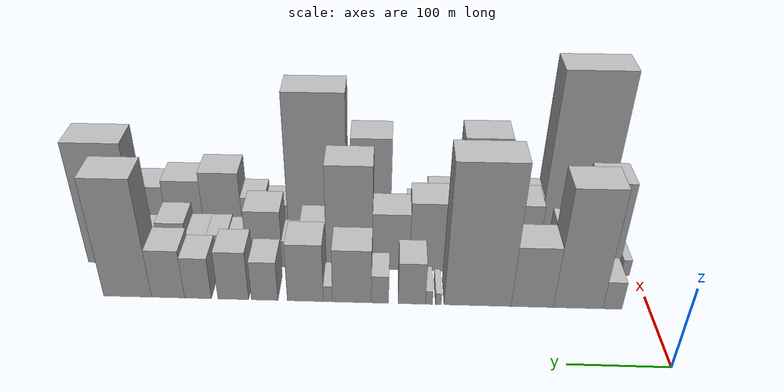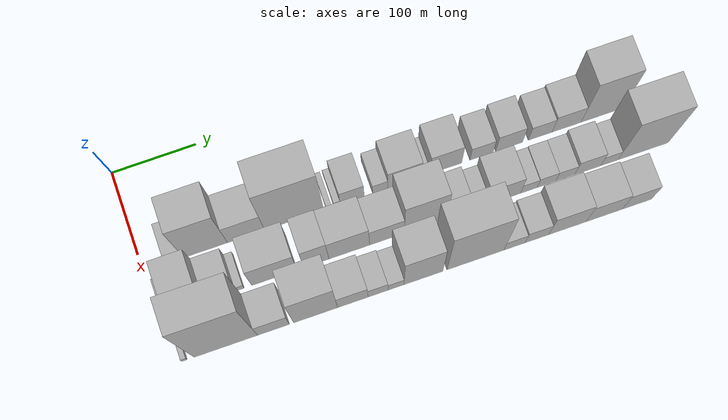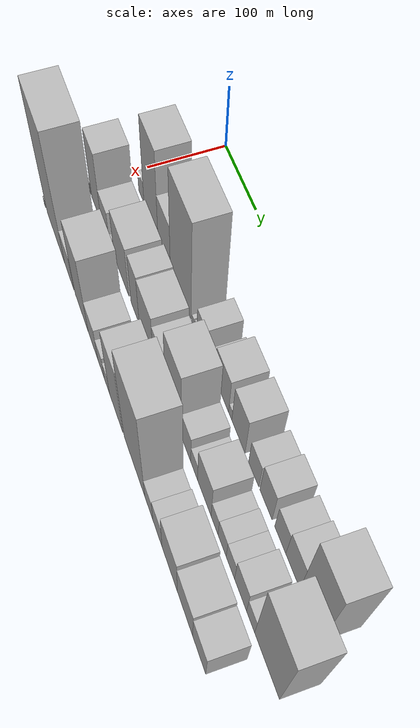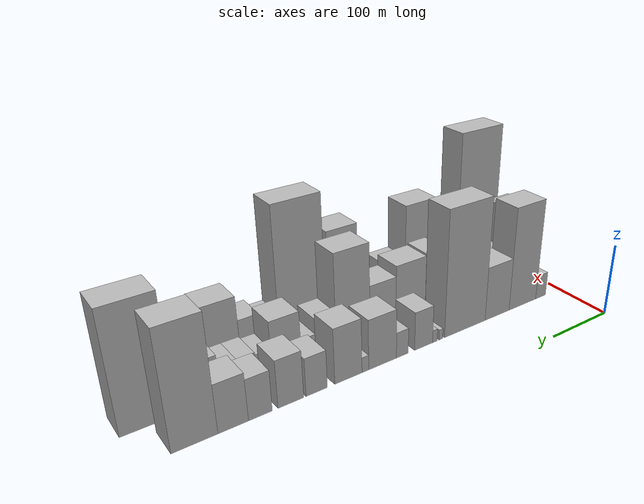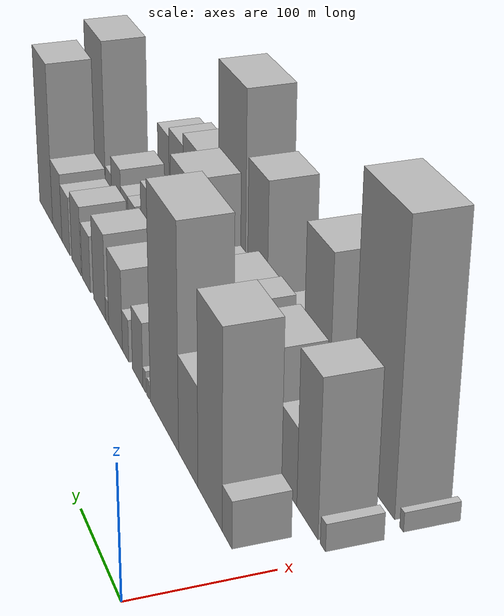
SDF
<sdf version="1.6">
 <world name="default">
  <model name="building_18">
   <static>1</static>
   <pose>100.0000 38.4075 0 0.000000 0.000000 0.000000</pose>
   <link name="link">
    <pose>0 0 18.00 0 0 0</pose>
    <collision name="collision"><geometry><box><size>40.0000 19.6983 36.0000</size></box></geometry></collision>
    <visual name="visual">
     <cast_shadows>0</cast_shadows>
     <geometry><box><size>40.0000 19.6983 36.0000</size></box></geometry>
     <material>
      <script>
       <uri>model://HANNAS_wall/materials/scripts</uri>
       <uri>model://HANNAS_wall/materials/textures</uri>
       <name>vrc/HANNAS_wall</name>
      </script>
     </material>
    </visual>
   </link>
  </model>
  <model name="building_19">
   <static>1</static>
   <pose>100.0000 73.9389 0 0.000000 0.000000 0.000000</pose>
   <link name="link">
    <pose>0 0 75.00 0 0 0</pose>
    <collision name="collision"><geometry><box><size>40.0000 51.3646 150.0000</size></box></geometry></collision>
    <visual name="visual">
     <cast_shadows>0</cast_shadows>
     <geometry><box><size>40.0000 51.3646 150.0000</size></box></geometry>
     <material>
      <script>
       <uri>model://HANNAS_wall/materials/scripts</uri>
       <uri>model://HANNAS_wall/materials/textures</uri>
       <name>vrc/HANNAS_wall</name>
      </script>
     </material>
    </visual>
   </link>
  </model>
  <model name="building_20">
   <static>1</static>
   <pose>100.0000 121.5936 0 0.000000 0.000000 0.000000</pose>
   <link name="link">
    <pose>0 0 39.00 0 0 0</pose>
    <collision name="collision"><geometry><box><size>40.0000 43.9448 78.0000</size></box></geometry></collision>
    <visual name="visual">
     <cast_shadows>0</cast_shadows>
     <geometry><box><size>40.0000 43.9448 78.0000</size></box></geometry>
     <material>
      <script>
       <uri>model://HANNAS_wall/materials/scripts</uri>
       <uri>model://HANNAS_wall/materials/textures</uri>
       <name>vrc/HANNAS_wall</name>
      </script>
     </material>
    </visual>
   </link>
  </model>
  <model name="building_21">
   <static>1</static>
   <pose>100.0000 178.5082 0 0.000000 0.000000 0.000000</pose>
   <link name="link">
    <pose>0 0 88.50 0 0 0</pose>
    <collision name="collision"><geometry><box><size>40.0000 69.8843 177.0000</size></box></geometry></collision>
    <visual name="visual">
     <cast_shadows>0</cast_shadows>
     <geometry><box><size>40.0000 69.8843 177.0000</size></box></geometry>
     <material>
      <script>
       <uri>model://HANNAS_wall/materials/scripts</uri>
       <uri>model://HANNAS_wall/materials/textures</uri>
       <name>vrc/HANNAS_wall</name>
      </script>
     </material>
    </visual>
   </link>
  </model>
  <model name="building_22">
   <static>1</static>
   <pose>100.0000 219.5186 0 0.000000 0.000000 0.000000</pose>
   <link name="link">
    <pose>0 0 7.50 0 0 0</pose>
    <collision name="collision"><geometry><box><size>40.0000 6.1366 15.0000</size></box></geometry></collision>
    <visual name="visual">
     <cast_shadows>0</cast_shadows>
     <geometry><box><size>40.0000 6.1366 15.0000</size></box></geometry>
     <material>
      <script>
       <uri>model://HANNAS_wall/materials/scripts</uri>
       <uri>model://HANNAS_wall/materials/textures</uri>
       <name>vrc/HANNAS_wall</name>
      </script>
     </material>
    </visual>
   </link>
  </model>
  <model name="building_23">
   <static>1</static>
   <pose>100.0000 229.3494 0 0.000000 0.000000 0.000000</pose>
   <link name="link">
    <pose>0 0 9.00 0 0 0</pose>
    <collision name="collision"><geometry><box><size>40.0000 7.5250 18.0000</size></box></geometry></collision>
    <visual name="visual">
     <cast_shadows>0</cast_shadows>
     <geometry><box><size>40.0000 7.5250 18.0000</size></box></geometry>
     <material>
      <script>
       <uri>model://HANNAS_wall/materials/scripts</uri>
       <uri>model://HANNAS_wall/materials/textures</uri>
       <name>vrc/HANNAS_wall</name>
      </script>
     </material>
    </visual>
   </link>
  </model>
  <model name="building_24">
   <static>1</static>
   <pose>100.0000 247.4347 0 0.000000 0.000000 0.000000</pose>
   <link name="link">
    <pose>0 0 27.00 0 0 0</pose>
    <collision name="collision"><geometry><box><size>40.0000 28.6455 54.0000</size></box></geometry></collision>
    <visual name="visual">
     <cast_shadows>0</cast_shadows>
     <geometry><box><size>40.0000 28.6455 54.0000</size></box></geometry>
     <material>
      <script>
       <uri>model://HANNAS_wall/materials/scripts</uri>
       <uri>model://HANNAS_wall/materials/textures</uri>
       <name>vrc/HANNAS_wall</name>
      </script>
     </material>
    </visual>
   </link>
  </model>
  <model name="building_25">
   <static>1</static>
   <pose>100.0000 280.8469 0 0.000000 0.000000 0.000000</pose>
   <link name="link">
    <pose>0 0 18.00 0 0 0</pose>
    <collision name="collision"><geometry><box><size>40.0000 18.1789 36.0000</size></box></geometry></collision>
    <visual name="visual">
     <cast_shadows>0</cast_shadows>
     <geometry><box><size>40.0000 18.1789 36.0000</size></box></geometry>
     <material>
      <script>
       <uri>model://HANNAS_wall/materials/scripts</uri>
       <uri>model://HANNAS_wall/materials/textures</uri>
       <name>vrc/HANNAS_wall</name>
      </script>
     </material>
    </visual>
   </link>
  </model>
  <model name="building_26">
   <static>1</static>
   <pose>100.0000 310.4308 0 0.000000 0.000000 0.000000</pose>
   <link name="link">
    <pose>0 0 34.50 0 0 0</pose>
    <collision name="collision"><geometry><box><size>40.0000 40.9889 69.0000</size></box></geometry></collision>
    <visual name="visual">
     <cast_shadows>0</cast_shadows>
     <geometry><box><size>40.0000 40.9889 69.0000</size></box></geometry>
     <material>
      <script>
       <uri>model://HANNAS_wall/materials/scripts</uri>
       <uri>model://HANNAS_wall/materials/textures</uri>
       <name>vrc/HANNAS_wall</name>
      </script>
     </material>
    </visual>
   </link>
  </model>
  <model name="building_27">
   <static>1</static>
   <pose>100.0000 335.7173 0 0.000000 0.000000 0.000000</pose>
   <link name="link">
    <pose>0 0 10.50 0 0 0</pose>
    <collision name="collision"><geometry><box><size>40.0000 9.5842 21.0000</size></box></geometry></collision>
    <visual name="visual">
     <cast_shadows>0</cast_shadows>
     <geometry><box><size>40.0000 9.5842 21.0000</size></box></geometry>
     <material>
      <script>
       <uri>model://HANNAS_wall/materials/scripts</uri>
       <uri>model://HANNAS_wall/materials/textures</uri>
       <name>vrc/HANNAS_wall</name>
      </script>
     </material>
    </visual>
   </link>
  </model>
  <model name="building_28">
   <static>1</static>
   <pose>100.0000 359.5613 0 0.000000 0.000000 0.000000</pose>
   <link name="link">
    <pose>0 0 37.50 0 0 0</pose>
    <collision name="collision"><geometry><box><size>40.0000 38.1038 75.0000</size></box></geometry></collision>
    <visual name="visual">
     <cast_shadows>0</cast_shadows>
     <geometry><box><size>40.0000 38.1038 75.0000</size></box></geometry>
     <material>
      <script>
       <uri>model://HANNAS_wall/materials/scripts</uri>
       <uri>model://HANNAS_wall/materials/textures</uri>
       <name>vrc/HANNAS_wall</name>
      </script>
     </material>
    </visual>
   </link>
  </model>
  <model name="building_29">
   <static>1</static>
   <pose>100.0000 402.6842 0 0.000000 0.000000 0.000000</pose>
   <link name="link">
    <pose>0 0 25.50 0 0 0</pose>
    <collision name="collision"><geometry><box><size>40.0000 28.1420 51.0000</size></box></geometry></collision>
    <visual name="visual">
     <cast_shadows>0</cast_shadows>
     <geometry><box><size>40.0000 28.1420 51.0000</size></box></geometry>
     <material>
      <script>
       <uri>model://HANNAS_wall/materials/scripts</uri>
       <uri>model://HANNAS_wall/materials/textures</uri>
       <name>vrc/HANNAS_wall</name>
      </script>
     </material>
    </visual>
   </link>
  </model>
  <model name="building_30">
   <static>1</static>
   <pose>100.0000 436.0479 0 0.000000 0.000000 0.000000</pose>
   <link name="link">
    <pose>0 0 31.50 0 0 0</pose>
    <collision name="collision"><geometry><box><size>40.0000 32.5853 63.0000</size></box></geometry></collision>
    <visual name="visual">
     <cast_shadows>0</cast_shadows>
     <geometry><box><size>40.0000 32.5853 63.0000</size></box></geometry>
     <material>
      <script>
       <uri>model://HANNAS_wall/materials/scripts</uri>
       <uri>model://HANNAS_wall/materials/textures</uri>
       <name>vrc/HANNAS_wall</name>
      </script>
     </material>
    </visual>
   </link>
  </model>
  <model name="building_31">
   <static>1</static>
   <pose>100.0000 473.7075 0 0.000000 0.000000 0.000000</pose>
   <link name="link">
    <pose>0 0 27.00 0 0 0</pose>
    <collision name="collision"><geometry><box><size>40.0000 28.7339 54.0000</size></box></geometry></collision>
    <visual name="visual">
     <cast_shadows>0</cast_shadows>
     <geometry><box><size>40.0000 28.7339 54.0000</size></box></geometry>
     <material>
      <script>
       <uri>model://HANNAS_wall/materials/scripts</uri>
       <uri>model://HANNAS_wall/materials/textures</uri>
       <name>vrc/HANNAS_wall</name>
      </script>
     </material>
    </visual>
   </link>
  </model>
  <model name="building_32">
   <static>1</static>
   <pose>100.0000 505.7392 0 0.000000 0.000000 0.000000</pose>
   <link name="link">
    <pose>0 0 31.50 0 0 0</pose>
    <collision name="collision"><geometry><box><size>40.0000 35.3296 63.0000</size></box></geometry></collision>
    <visual name="visual">
     <cast_shadows>0</cast_shadows>
     <geometry><box><size>40.0000 35.3296 63.0000</size></box></geometry>
     <material>
      <script>
       <uri>model://HANNAS_wall/materials/scripts</uri>
       <uri>model://HANNAS_wall/materials/textures</uri>
       <name>vrc/HANNAS_wall</name>
      </script>
     </material>
    </visual>
   </link>
  </model>
  <model name="building_33">
   <static>1</static>
   <pose>100.0000 549.0636 0 0.000000 0.000000 0.000000</pose>
   <link name="link">
    <pose>0 0 75.00 0 0 0</pose>
    <collision name="collision"><geometry><box><size>40.0000 51.3193 150.0000</size></box></geometry></collision>
    <visual name="visual">
     <cast_shadows>0</cast_shadows>
     <geometry><box><size>40.0000 51.3193 150.0000</size></box></geometry>
     <material>
      <script>
       <uri>model://HANNAS_wall/materials/scripts</uri>
       <uri>model://HANNAS_wall/materials/textures</uri>
       <name>vrc/HANNAS_wall</name>
      </script>
     </material>
    </visual>
   </link>
  </model>
  <model name="building_51">
   <static>1</static>
   <pose>155.0000 12.1256 0 0.000000 0.000000 0.000000</pose>
   <link name="link">
    <pose>0 0 10.50 0 0 0</pose>
    <collision name="collision"><geometry><box><size>40.0000 9.0807 21.0000</size></box></geometry></collision>
    <visual name="visual">
     <cast_shadows>0</cast_shadows>
     <geometry><box><size>40.0000 9.0807 21.0000</size></box></geometry>
     <material>
      <script>
       <uri>model://HANNAS_wall/materials/scripts</uri>
       <uri>model://HANNAS_wall/materials/textures</uri>
       <name>vrc/HANNAS_wall</name>
      </script>
     </material>
    </visual>
   </link>
  </model>
  <model name="building_52">
   <static>1</static>
   <pose>155.0000 39.7600 0 0.000000 0.000000 0.000000</pose>
   <link name="link">
    <pose>0 0 60.00 0 0 0</pose>
    <collision name="collision"><geometry><box><size>40.0000 38.1880 120.0000</size></box></geometry></collision>
    <visual name="visual">
     <cast_shadows>0</cast_shadows>
     <geometry><box><size>40.0000 38.1880 120.0000</size></box></geometry>
     <material>
      <script>
       <uri>model://HANNAS_wall/materials/scripts</uri>
       <uri>model://HANNAS_wall/materials/textures</uri>
       <name>vrc/HANNAS_wall</name>
      </script>
     </material>
    </visual>
   </link>
  </model>
  <model name="building_53">
   <static>1</static>
   <pose>155.0000 75.3585 0 0.000000 0.000000 0.000000</pose>
   <link name="link">
    <pose>0 0 30.00 0 0 0</pose>
    <collision name="collision"><geometry><box><size>40.0000 33.0092 60.0000</size></box></geometry></collision>
    <visual name="visual">
     <cast_shadows>0</cast_shadows>
     <geometry><box><size>40.0000 33.0092 60.0000</size></box></geometry>
     <material>
      <script>
       <uri>model://HANNAS_wall/materials/scripts</uri>
       <uri>model://HANNAS_wall/materials/textures</uri>
       <name>vrc/HANNAS_wall</name>
      </script>
     </material>
    </visual>
   </link>
  </model>
  <model name="building_54">
   <static>1</static>
   <pose>155.0000 96.5791 0 0.000000 0.000000 0.000000</pose>
   <link name="link">
    <pose>0 0 10.50 0 0 0</pose>
    <collision name="collision"><geometry><box><size>40.0000 9.4319 21.0000</size></box></geometry></collision>
    <visual name="visual">
     <cast_shadows>0</cast_shadows>
     <geometry><box><size>40.0000 9.4319 21.0000</size></box></geometry>
     <material>
      <script>
       <uri>model://HANNAS_wall/materials/scripts</uri>
       <uri>model://HANNAS_wall/materials/textures</uri>
       <name>vrc/HANNAS_wall</name>
      </script>
     </material>
    </visual>
   </link>
  </model>
  <model name="building_55">
   <static>1</static>
   <pose>155.0000 136.9483 0 0.000000 0.000000 0.000000</pose>
   <link name="link">
    <pose>0 0 45.00 0 0 0</pose>
    <collision name="collision"><geometry><box><size>40.0000 53.3066 90.0000</size></box></geometry></collision>
    <visual name="visual">
     <cast_shadows>0</cast_shadows>
     <geometry><box><size>40.0000 53.3066 90.0000</size></box></geometry>
     <material>
      <script>
       <uri>model://HANNAS_wall/materials/scripts</uri>
       <uri>model://HANNAS_wall/materials/textures</uri>
       <name>vrc/HANNAS_wall</name>
      </script>
     </material>
    </visual>
   </link>
  </model>
  <model name="building_56">
   <static>1</static>
   <pose>155.0000 186.3522 0 0.000000 0.000000 0.000000</pose>
   <link name="link">
    <pose>0 0 46.50 0 0 0</pose>
    <collision name="collision"><geometry><box><size>40.0000 29.5012 93.0000</size></box></geometry></collision>
    <visual name="visual">
     <cast_shadows>0</cast_shadows>
     <geometry><box><size>40.0000 29.5012 93.0000</size></box></geometry>
     <material>
      <script>
       <uri>model://HANNAS_wall/materials/scripts</uri>
       <uri>model://HANNAS_wall/materials/textures</uri>
       <name>vrc/HANNAS_wall</name>
      </script>
     </material>
    </visual>
   </link>
  </model>
  <model name="building_57">
   <static>1</static>
   <pose>155.0000 225.1708 0 0.000000 0.000000 0.000000</pose>
   <link name="link">
    <pose>0 0 45.00 0 0 0</pose>
    <collision name="collision"><geometry><box><size>40.0000 48.1358 90.0000</size></box></geometry></collision>
    <visual name="visual">
     <cast_shadows>0</cast_shadows>
     <geometry><box><size>40.0000 48.1358 90.0000</size></box></geometry>
     <material>
      <script>
       <uri>model://HANNAS_wall/materials/scripts</uri>
       <uri>model://HANNAS_wall/materials/textures</uri>
       <name>vrc/HANNAS_wall</name>
      </script>
     </material>
    </visual>
   </link>
  </model>
  <model name="building_58">
   <static>1</static>
   <pose>155.0000 269.8080 0 0.000000 0.000000 0.000000</pose>
   <link name="link">
    <pose>0 0 37.50 0 0 0</pose>
    <collision name="collision"><geometry><box><size>40.0000 41.1387 75.0000</size></box></geometry></collision>
    <visual name="visual">
     <cast_shadows>0</cast_shadows>
     <geometry><box><size>40.0000 41.1387 75.0000</size></box></geometry>
     <material>
      <script>
       <uri>model://HANNAS_wall/materials/scripts</uri>
       <uri>model://HANNAS_wall/materials/textures</uri>
       <name>vrc/HANNAS_wall</name>
      </script>
     </material>
    </visual>
   </link>
  </model>
  <model name="building_59">
   <static>1</static>
   <pose>155.0000 315.7709 0 0.000000 0.000000 0.000000</pose>
   <link name="link">
    <pose>0 0 67.50 0 0 0</pose>
    <collision name="collision"><geometry><box><size>40.0000 50.7871 135.0000</size></box></geometry></collision>
    <visual name="visual">
     <cast_shadows>0</cast_shadows>
     <geometry><box><size>40.0000 50.7871 135.0000</size></box></geometry>
     <material>
      <script>
       <uri>model://HANNAS_wall/materials/scripts</uri>
       <uri>model://HANNAS_wall/materials/textures</uri>
       <name>vrc/HANNAS_wall</name>
      </script>
     </material>
    </visual>
   </link>
  </model>
  <model name="building_60">
   <static>1</static>
   <pose>155.0000 355.4239 0 0.000000 0.000000 0.000000</pose>
   <link name="link">
    <pose>0 0 28.50 0 0 0</pose>
    <collision name="collision"><geometry><box><size>40.0000 28.5191 57.0000</size></box></geometry></collision>
    <visual name="visual">
     <cast_shadows>0</cast_shadows>
     <geometry><box><size>40.0000 28.5191 57.0000</size></box></geometry>
     <material>
      <script>
       <uri>model://HANNAS_wall/materials/scripts</uri>
       <uri>model://HANNAS_wall/materials/textures</uri>
       <name>vrc/HANNAS_wall</name>
      </script>
     </material>
    </visual>
   </link>
  </model>
  <model name="building_61">
   <static>1</static>
   <pose>155.0000 379.7930 0 0.000000 0.000000 0.000000</pose>
   <link name="link">
    <pose>0 0 18.00 0 0 0</pose>
    <collision name="collision"><geometry><box><size>40.0000 20.2191 36.0000</size></box></geometry></collision>
    <visual name="visual">
     <cast_shadows>0</cast_shadows>
     <geometry><box><size>40.0000 20.2191 36.0000</size></box></geometry>
     <material>
      <script>
       <uri>model://HANNAS_wall/materials/scripts</uri>
       <uri>model://HANNAS_wall/materials/textures</uri>
       <name>vrc/HANNAS_wall</name>
      </script>
     </material>
    </visual>
   </link>
  </model>
  <model name="building_62">
   <static>1</static>
   <pose>155.0000 409.7057 0 0.000000 0.000000 0.000000</pose>
   <link name="link">
    <pose>0 0 37.50 0 0 0</pose>
    <collision name="collision"><geometry><box><size>40.0000 39.6062 75.0000</size></box></geometry></collision>
    <visual name="visual">
     <cast_shadows>0</cast_shadows>
     <geometry><box><size>40.0000 39.6062 75.0000</size></box></geometry>
     <material>
      <script>
       <uri>model://HANNAS_wall/materials/scripts</uri>
       <uri>model://HANNAS_wall/materials/textures</uri>
       <name>vrc/HANNAS_wall</name>
      </script>
     </material>
    </visual>
   </link>
  </model>
  <model name="building_63">
   <static>1</static>
   <pose>155.0000 439.4043 0 0.000000 0.000000 0.000000</pose>
   <link name="link">
    <pose>0 0 19.50 0 0 0</pose>
    <collision name="collision"><geometry><box><size>40.0000 19.7910 39.0000</size></box></geometry></collision>
    <visual name="visual">
     <cast_shadows>0</cast_shadows>
     <geometry><box><size>40.0000 19.7910 39.0000</size></box></geometry>
     <material>
      <script>
       <uri>model://HANNAS_wall/materials/scripts</uri>
       <uri>model://HANNAS_wall/materials/textures</uri>
       <name>vrc/HANNAS_wall</name>
      </script>
     </material>
    </visual>
   </link>
  </model>
  <model name="building_64">
   <static>1</static>
   <pose>155.0000 460.6255 0 0.000000 0.000000 0.000000</pose>
   <link name="link">
    <pose>0 0 21.00 0 0 0</pose>
    <collision name="collision"><geometry><box><size>40.0000 22.6514 42.0000</size></box></geometry></collision>
    <visual name="visual">
     <cast_shadows>0</cast_shadows>
     <geometry><box><size>40.0000 22.6514 42.0000</size></box></geometry>
     <material>
      <script>
       <uri>model://HANNAS_wall/materials/scripts</uri>
       <uri>model://HANNAS_wall/materials/textures</uri>
       <name>vrc/HANNAS_wall</name>
      </script>
     </material>
    </visual>
   </link>
  </model>
  <model name="building_65">
   <static>1</static>
   <pose>155.0000 483.3495 0 0.000000 0.000000 0.000000</pose>
   <link name="link">
    <pose>0 0 21.00 0 0 0</pose>
    <collision name="collision"><geometry><box><size>40.0000 22.7964 42.0000</size></box></geometry></collision>
    <visual name="visual">
     <cast_shadows>0</cast_shadows>
     <geometry><box><size>40.0000 22.7964 42.0000</size></box></geometry>
     <material>
      <script>
       <uri>model://HANNAS_wall/materials/scripts</uri>
       <uri>model://HANNAS_wall/materials/textures</uri>
       <name>vrc/HANNAS_wall</name>
      </script>
     </material>
    </visual>
   </link>
  </model>
  <model name="building_66">
   <static>1</static>
   <pose>155.0000 510.5578 0 0.000000 0.000000 0.000000</pose>
   <link name="link">
    <pose>0 0 28.50 0 0 0</pose>
    <collision name="collision"><geometry><box><size>40.0000 31.6202 57.0000</size></box></geometry></collision>
    <visual name="visual">
     <cast_shadows>0</cast_shadows>
     <geometry><box><size>40.0000 31.6202 57.0000</size></box></geometry>
     <material>
      <script>
       <uri>model://HANNAS_wall/materials/scripts</uri>
       <uri>model://HANNAS_wall/materials/textures</uri>
       <name>vrc/HANNAS_wall</name>
      </script>
     </material>
    </visual>
   </link>
  </model>
  <model name="building_67">
   <static>1</static>
   <pose>155.0000 536.8856 0 0.000000 0.000000 0.000000</pose>
   <link name="link">
    <pose>0 0 19.50 0 0 0</pose>
    <collision name="collision"><geometry><box><size>40.0000 21.0354 39.0000</size></box></geometry></collision>
    <visual name="visual">
     <cast_shadows>0</cast_shadows>
     <geometry><box><size>40.0000 21.0354 39.0000</size></box></geometry>
     <material>
      <script>
       <uri>model://HANNAS_wall/materials/scripts</uri>
       <uri>model://HANNAS_wall/materials/textures</uri>
       <name>vrc/HANNAS_wall</name>
      </script>
     </material>
    </visual>
   </link>
  </model>
  <model name="building_68">
   <static>1</static>
   <pose>155.0000 578.1728 0 0.000000 0.000000 0.000000</pose>
   <link name="link">
    <pose>0 0 78.00 0 0 0</pose>
    <collision name="collision"><geometry><box><size>40.0000 61.5389 156.0000</size></box></geometry></collision>
    <visual name="visual">
     <cast_shadows>0</cast_shadows>
     <geometry><box><size>40.0000 61.5389 156.0000</size></box></geometry>
     <material>
      <script>
       <uri>model://HANNAS_wall/materials/scripts</uri>
       <uri>model://HANNAS_wall/materials/textures</uri>
       <name>vrc/HANNAS_wall</name>
      </script>
     </material>
    </visual>
   </link>
  </model>
  <model name="building_83">
   <static>1</static>
   <pose>210.0000 14.3183 0 0.000000 0.000000 0.000000</pose>
   <link name="link">
    <pose>0 0 7.50 0 0 0</pose>
    <collision name="collision"><geometry><box><size>40.0000 6.0995 15.0000</size></box></geometry></collision>
    <visual name="visual">
     <cast_shadows>0</cast_shadows>
     <geometry><box><size>40.0000 6.0995 15.0000</size></box></geometry>
     <material>
      <script>
       <uri>model://HANNAS_wall/materials/scripts</uri>
       <uri>model://HANNAS_wall/materials/textures</uri>
       <name>vrc/HANNAS_wall</name>
      </script>
     </material>
    </visual>
   </link>
  </model>
  <model name="building_84">
   <static>1</static>
   <pose>210.0000 62.2147 0 0.000000 0.000000 0.000000</pose>
   <link name="link">
    <pose>0 0 109.50 0 0 0</pose>
    <collision name="collision"><geometry><box><size>40.0000 73.6932 219.0000</size></box></geometry></collision>
    <visual name="visual">
     <cast_shadows>0</cast_shadows>
     <geometry><box><size>40.0000 73.6932 219.0000</size></box></geometry>
     <material>
      <script>
       <uri>model://HANNAS_wall/materials/scripts</uri>
       <uri>model://HANNAS_wall/materials/textures</uri>
       <name>vrc/HANNAS_wall</name>
      </script>
     </material>
    </visual>
   </link>
  </model>
  <model name="building_85">
   <static>1</static>
   <pose>210.0000 117.6365 0 0.000000 0.000000 0.000000</pose>
   <link name="link">
    <pose>0 0 31.50 0 0 0</pose>
    <collision name="collision"><geometry><box><size>40.0000 37.1504 63.0000</size></box></geometry></collision>
    <visual name="visual">
     <cast_shadows>0</cast_shadows>
     <geometry><box><size>40.0000 37.1504 63.0000</size></box></geometry>
     <material>
      <script>
       <uri>model://HANNAS_wall/materials/scripts</uri>
       <uri>model://HANNAS_wall/materials/textures</uri>
       <name>vrc/HANNAS_wall</name>
      </script>
     </material>
    </visual>
   </link>
  </model>
  <model name="building_86">
   <static>1</static>
   <pose>210.0000 166.8651 0 0.000000 0.000000 0.000000</pose>
   <link name="link">
    <pose>0 0 69.00 0 0 0</pose>
    <collision name="collision"><geometry><box><size>40.0000 51.3069 138.0000</size></box></geometry></collision>
    <visual name="visual">
     <cast_shadows>0</cast_shadows>
     <geometry><box><size>40.0000 51.3069 138.0000</size></box></geometry>
     <material>
      <script>
       <uri>model://HANNAS_wall/materials/scripts</uri>
       <uri>model://HANNAS_wall/materials/textures</uri>
       <name>vrc/HANNAS_wall</name>
      </script>
     </material>
    </visual>
   </link>
  </model>
  <model name="building_87">
   <static>1</static>
   <pose>210.0000 210.5020 0 0.000000 0.000000 0.000000</pose>
   <link name="link">
    <pose>0 0 31.50 0 0 0</pose>
    <collision name="collision"><geometry><box><size>40.0000 35.9668 63.0000</size></box></geometry></collision>
    <visual name="visual">
     <cast_shadows>0</cast_shadows>
     <geometry><box><size>40.0000 35.9668 63.0000</size></box></geometry>
     <material>
      <script>
       <uri>model://HANNAS_wall/materials/scripts</uri>
       <uri>model://HANNAS_wall/materials/textures</uri>
       <name>vrc/HANNAS_wall</name>
      </script>
     </material>
    </visual>
   </link>
  </model>
  <model name="building_88">
   <static>1</static>
   <pose>210.0000 240.1995 0 0.000000 0.000000 0.000000</pose>
   <link name="link">
    <pose>0 0 22.50 0 0 0</pose>
    <collision name="collision"><geometry><box><size>40.0000 23.4282 45.0000</size></box></geometry></collision>
    <visual name="visual">
     <cast_shadows>0</cast_shadows>
     <geometry><box><size>40.0000 23.4282 45.0000</size></box></geometry>
     <material>
      <script>
       <uri>model://HANNAS_wall/materials/scripts</uri>
       <uri>model://HANNAS_wall/materials/textures</uri>
       <name>vrc/HANNAS_wall</name>
      </script>
     </material>
    </visual>
   </link>
  </model>
  <model name="building_89">
   <static>1</static>
   <pose>210.0000 261.3633 0 0.000000 0.000000 0.000000</pose>
   <link name="link">
    <pose>0 0 18.00 0 0 0</pose>
    <collision name="collision"><geometry><box><size>40.0000 18.8995 36.0000</size></box></geometry></collision>
    <visual name="visual">
     <cast_shadows>0</cast_shadows>
     <geometry><box><size>40.0000 18.8995 36.0000</size></box></geometry>
     <material>
      <script>
       <uri>model://HANNAS_wall/materials/scripts</uri>
       <uri>model://HANNAS_wall/materials/textures</uri>
       <name>vrc/HANNAS_wall</name>
      </script>
     </material>
    </visual>
   </link>
  </model>
  <model name="building_90">
   <static>1</static>
   <pose>210.0000 293.7260 0 0.000000 0.000000 0.000000</pose>
   <link name="link">
    <pose>0 0 67.50 0 0 0</pose>
    <collision name="collision"><geometry><box><size>40.0000 45.8259 135.0000</size></box></geometry></collision>
    <visual name="visual">
     <cast_shadows>0</cast_shadows>
     <geometry><box><size>40.0000 45.8259 135.0000</size></box></geometry>
     <material>
      <script>
       <uri>model://HANNAS_wall/materials/scripts</uri>
       <uri>model://HANNAS_wall/materials/textures</uri>
       <name>vrc/HANNAS_wall</name>
      </script>
     </material>
    </visual>
   </link>
  </model>
  <model name="building_91">
   <static>1</static>
   <pose>210.0000 355.5023 0 0.000000 0.000000 0.000000</pose>
   <link name="link">
    <pose>0 0 94.50 0 0 0</pose>
    <collision name="collision"><geometry><box><size>40.0000 67.7268 189.0000</size></box></geometry></collision>
    <visual name="visual">
     <cast_shadows>0</cast_shadows>
     <geometry><box><size>40.0000 67.7268 189.0000</size></box></geometry>
     <material>
      <script>
       <uri>model://HANNAS_wall/materials/scripts</uri>
       <uri>model://HANNAS_wall/materials/textures</uri>
       <name>vrc/HANNAS_wall</name>
      </script>
     </material>
    </visual>
   </link>
  </model>
  <model name="building_92">
   <static>1</static>
   <pose>210.0000 402.0197 0 0.000000 0.000000 0.000000</pose>
   <link name="link">
    <pose>0 0 22.50 0 0 0</pose>
    <collision name="collision"><geometry><box><size>40.0000 25.3080 45.0000</size></box></geometry></collision>
    <visual name="visual">
     <cast_shadows>0</cast_shadows>
     <geometry><box><size>40.0000 25.3080 45.0000</size></box></geometry>
     <material>
      <script>
       <uri>model://HANNAS_wall/materials/scripts</uri>
       <uri>model://HANNAS_wall/materials/textures</uri>
       <name>vrc/HANNAS_wall</name>
      </script>
     </material>
    </visual>
   </link>
  </model>
  <model name="building_93">
   <static>1</static>
   <pose>210.0000 428.7097 0 0.000000 0.000000 0.000000</pose>
   <link name="link">
    <pose>0 0 27.00 0 0 0</pose>
    <collision name="collision"><geometry><box><size>40.0000 28.0719 54.0000</size></box></geometry></collision>
    <visual name="visual">
     <cast_shadows>0</cast_shadows>
     <geometry><box><size>40.0000 28.0719 54.0000</size></box></geometry>
     <material>
      <script>
       <uri>model://HANNAS_wall/materials/scripts</uri>
       <uri>model://HANNAS_wall/materials/textures</uri>
       <name>vrc/HANNAS_wall</name>
      </script>
     </material>
    </visual>
   </link>
  </model>
  <model name="building_94">
   <static>1</static>
   <pose>210.0000 465.2957 0 0.000000 0.000000 0.000000</pose>
   <link name="link">
    <pose>0 0 43.50 0 0 0</pose>
    <collision name="collision"><geometry><box><size>40.0000 45.1001 87.0000</size></box></geometry></collision>
    <visual name="visual">
     <cast_shadows>0</cast_shadows>
     <geometry><box><size>40.0000 45.1001 87.0000</size></box></geometry>
     <material>
      <script>
       <uri>model://HANNAS_wall/materials/scripts</uri>
       <uri>model://HANNAS_wall/materials/textures</uri>
       <name>vrc/HANNAS_wall</name>
      </script>
     </material>
    </visual>
   </link>
  </model>
  <model name="building_95">
   <static>1</static>
   <pose>210.0000 509.6155 0 0.000000 0.000000 0.000000</pose>
   <link name="link">
    <pose>0 0 37.50 0 0 0</pose>
    <collision name="collision"><geometry><box><size>40.0000 43.5395 75.0000</size></box></geometry></collision>
    <visual name="visual">
     <cast_shadows>0</cast_shadows>
     <geometry><box><size>40.0000 43.5395 75.0000</size></box></geometry>
     <material>
      <script>
       <uri>model://HANNAS_wall/materials/scripts</uri>
       <uri>model://HANNAS_wall/materials/textures</uri>
       <name>vrc/HANNAS_wall</name>
      </script>
     </material>
    </visual>
   </link>
  </model>
  <model name="building_96">
   <static>1</static>
   <pose>210.0000 549.2155 0 0.000000 0.000000 0.000000</pose>
   <link name="link">
    <pose>0 0 33.00 0 0 0</pose>
    <collision name="collision"><geometry><box><size>40.0000 35.6606 66.0000</size></box></geometry></collision>
    <visual name="visual">
     <cast_shadows>0</cast_shadows>
     <geometry><box><size>40.0000 35.6606 66.0000</size></box></geometry>
     <material>
      <script>
       <uri>model://HANNAS_wall/materials/scripts</uri>
       <uri>model://HANNAS_wall/materials/textures</uri>
       <name>vrc/HANNAS_wall</name>
      </script>
     </material>
    </visual>
   </link>
  </model>
 </world>
</sdf>
